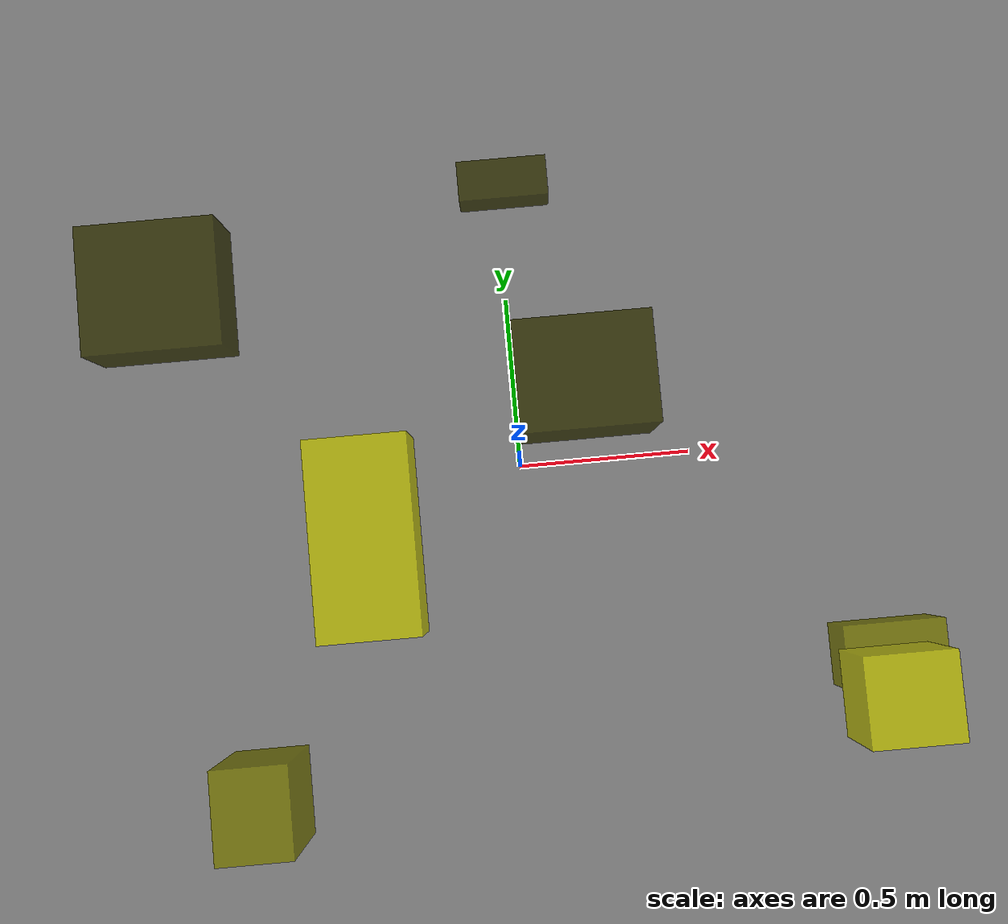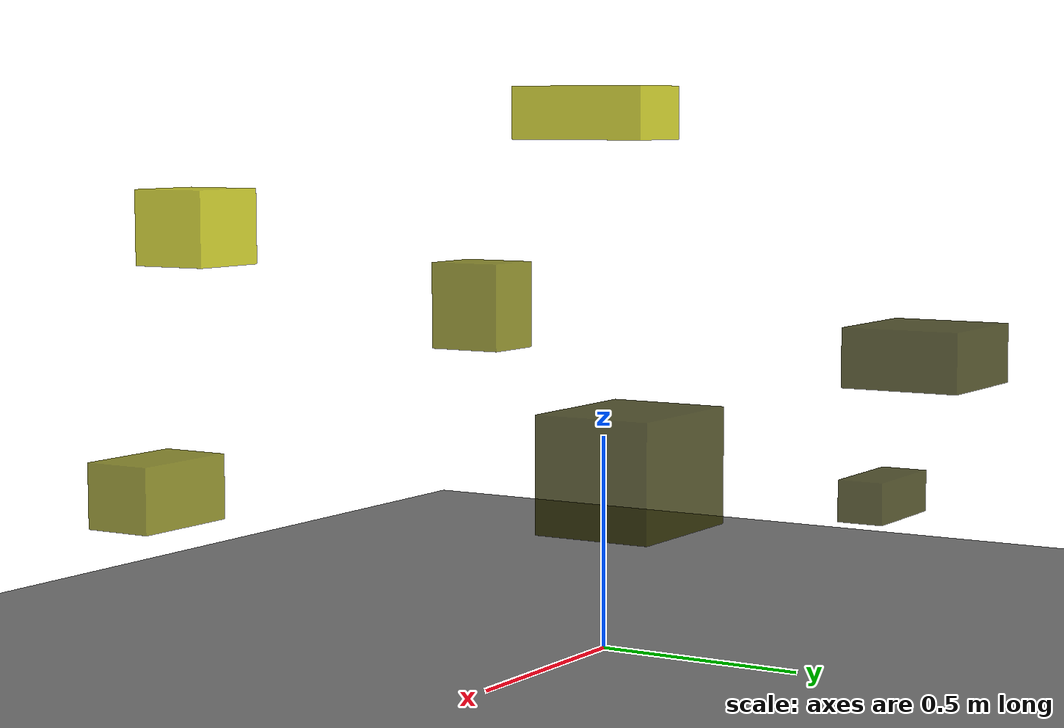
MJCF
<?xml version="1.0"?>
<mujoco model="obstacle_scene">
  <compiler angle="radian" coordinate="local"/>
  <option timestep="0.001" gravity="0 0 -9.81"/>

  <asset>
    <material name="obstacle_mat" rgba="0.8 0.8 0.0 0.8"/>
    <material name="ground_mat" rgba="0.5 0.5 0.5 1"/>
  </asset>

  <worldbody>
    <!-- Ground plane -->
    <geom name="ground" type="plane" size="3 3 0.1" material="ground_mat"/>

    <!-- Obstacles -->
    <body name="obstacle_0" pos="0.017632 0.713807 0.420969">
      <geom name="obs_0" type="box" size="0.115830 0.051921 0.045333" rgba="0.2 0.2 0.0 0.8"/>
    </body>
    <body name="obstacle_1" pos="0.887499 -0.584803 0.443091">
      <geom name="obs_1" type="box" size="0.127786 0.079678 0.071290" rgba="0.5 0.5 0.0 0.8"/>
    </body>
    <body name="obstacle_2" pos="-0.292796 -0.197529 1.246992">
      <geom name="obs_2" type="box" size="0.093478 0.181102 0.064645" rgba="0.8 0.8 0.0 0.8"/>
    </body>
    <body name="obstacle_3" pos="0.179959 0.175831 0.456808">
      <geom name="obs_3" type="box" size="0.174368 0.141145 0.133301" rgba="0.2 0.2 0.0 0.8"/>
    </body>
    <body name="obstacle_4" pos="-0.645226 -0.761614 0.731836">
      <geom name="obs_4" type="box" size="0.086656 0.102792 0.115444" rgba="0.5 0.5 0.0 0.8"/>
    </body>
    <body name="obstacle_5" pos="0.723630 -0.602525 1.001017">
      <geom name="obs_5" type="box" size="0.094277 0.091062 0.082669" rgba="0.8 0.8 0.0 0.8"/>
    </body>
    <body name="obstacle_6" pos="-0.832569 0.445780 0.641037">
      <geom name="obs_6" type="box" size="0.164707 0.154540 0.075433" rgba="0.2 0.2 0.0 0.8"/>
    </body>
  </worldbody>
</mujoco>
